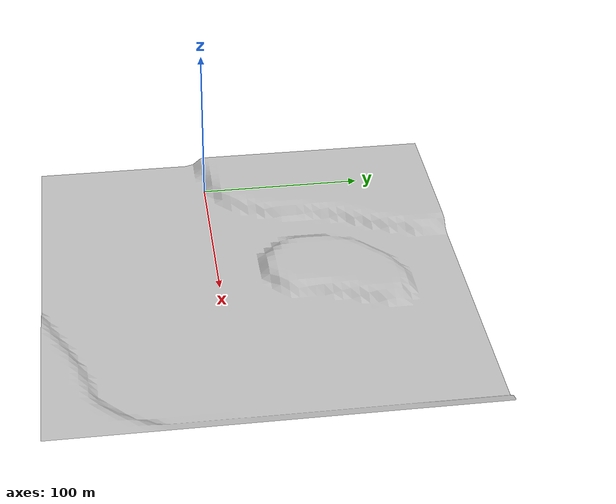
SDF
<?xml version="1.0"?>
<sdf version="1.9">
  <model name="world_mass">
    <static>true</static>
    <!-- World land, lifted above the old floor -->
    <link name="world_land_link">
      <pose>0 0 4 0 0 0</pose>
      <collision name="world_land_collision">
        <geometry>
          <mesh>
            <uri>model://world_mass/meshes/world_land_collision_high_only_04.obj</uri>
          </mesh>
        </geometry>
      </collision>

      <visual name="world_land_visual">
        <cast_shadows>false</cast_shadows>
        <geometry>
          <mesh>
            <uri>model://world_mass/meshes/world_land_collision_high_only_04.obj</uri>
          </mesh>
          <material>
            <ambient>0.8 0.2 0.2 1</ambient>
            <diffuse>0.360 0.250 0.200 1</diffuse>
        </material>
        </geometry>
      </visual>
    </link>
  </model>
</sdf>
